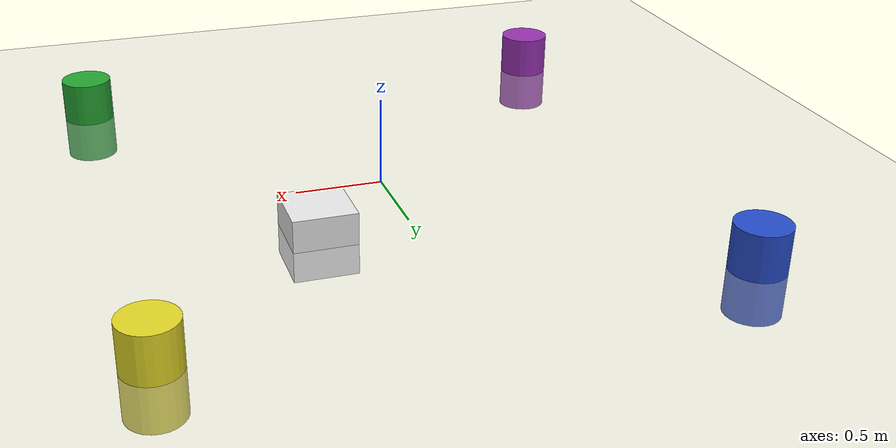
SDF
<sdf version="1.4">
 <world name="default">
  <include><uri>model://sun</uri></include>
  <include><uri>model://ground_plane</uri></include>
  <physics type="ode">
   <real_time_update_rate>1000.0</real_time_update_rate>
   <max_step_size>0.001</max_step_size>
   <real_time_factor>1</real_time_factor>
   <ode>
    <solver>
     <type>quick</type>
     <iters>150</iters>
     <precon_iters>0</precon_iters>
     <sor>1.400000</sor>
     <use_dynamic_moi_rescaling>1</use_dynamic_moi_rescaling>
    </solver>
    <constraints>
     <cfm>0.00001</cfm>
     <erp>0.2</erp>
     <contact_max_correcting_vel>2000.000000</contact_max_correcting_vel>
     <contact_surface_layer>0.01000</contact_surface_layer>
    </constraints>
   </ode>
  </physics>
  <model name="obstacle_1">
   <pose>-1.5 -1.5 0 0 0 0</pose>
   <link name="link">
    <collision name="collision">
     <geometry><cylinder><radius>0.12</radius><length>0.45</length></cylinder></geometry>
    </collision>
    <visual name="visual">
     <geometry><cylinder><radius>0.15</radius><length>0.5</length></cylinder></geometry>
     <material>
      <script><uri>file://media/materials/scripts/gazebo.material</uri><name>Gazebo/Purple</name></script>
     </material>
    </visual>
   </link>
  </model>
  <model name="obstacle_2">
   <pose>-1.5 1.5 0 0 0 0</pose>
   <link name="link">
    <collision name="collision">
     <geometry><cylinder><radius>0.12</radius><length>0.25</length></cylinder></geometry>
    </collision>
    <visual name="visual">
     <geometry><cylinder><radius>0.15</radius><length>0.5</length></cylinder></geometry>
     <material>
      <script><uri>file://media/materials/scripts/gazebo.material</uri><name>Gazebo/Blue</name></script>
     </material>
    </visual>
   </link>
  </model>
  <model name="obstacle_3">
   <pose>1.5 -1.5 0 0 0 0</pose>
   <link name="link">
    <collision name="collision">
     <geometry><cylinder><radius>0.12</radius><length>0.25</length></cylinder></geometry>
    </collision>
    <visual name="visual">
     <geometry><cylinder><radius>0.15</radius><length>0.5</length></cylinder></geometry>
     <material>
      <script><uri>file://media/materials/scripts/gazebo.material</uri><name>Gazebo/Green</name></script>
     </material>
    </visual>
   </link>
  </model>
  <model name="obstacle_4">
   <pose>1.5 1.5 0 0 0 0</pose>
   <link name="link">
    <collision name="collision">
     <geometry><cylinder><radius>0.12</radius><length>0.25</length></cylinder></geometry>
    </collision>
    <visual name="visual">
     <geometry><cylinder><radius>0.15</radius><length>0.5</length></cylinder></geometry>
     <material>
      <script><uri>file://media/materials/scripts/gazebo.material</uri><name>Gazebo/Yellow</name></script>
     </material>
    </visual>
   </link>
  </model>
  <model name="obstacle_5">
   <pose>0.5 0.5 0 0 0 0</pose>
   <link name="link">
    <collision name="collision"><geometry><box><size>0.25 0.25 0.25</size></box></geometry></collision>
    <visual name="visual">
     <geometry><box><size>0.35 0.35 0.35</size></box></geometry>
     <material>
      <script><uri>file://media/materials/scripts/gazebo.material</uri><name>Gazebo/White</name></script>
     </material>
    </visual>
   </link>
  </model>
  <scene><ambient>0.4 0.4 0.4 1</ambient><background>0.7 0.7 0.7 1</background><shadows>true</shadows></scene>
 </world>
</sdf>
